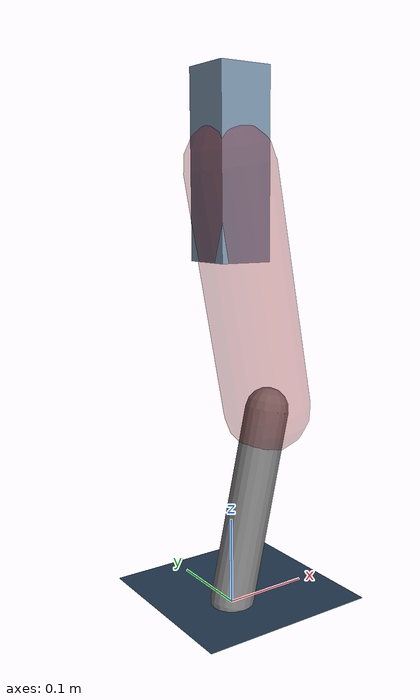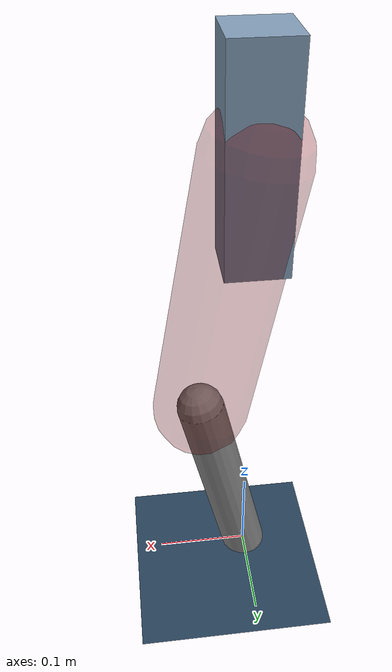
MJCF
<mujoco model="Hopper2D">
	<compiler inertiafromgeom="true" angle="radian" />
	<option timestep="0.001" integrator="implicit" cone="elliptic" solver="Newton" tolerance="1e-10" />

	<default>
		<geom contype="1" conaffinity="1" condim="3" friction="2 0.005 0.0001" solref="0.005 1" />
		<joint limited="true" damping="0.1" />
	</default>

	<asset>
		<texture name="skybox" type="skybox" builtin="gradient" rgb1=".4 .6 .8" rgb2="0 0 0" width="800" height="800" />
		<texture name="grid" type="2d" builtin="checker" rgb1=".1 .2 .3" rgb2=".2 .3 .4" width="300" height="300" mark="edge" markrgb=".2 .3 .4" />
		<material name="ground" texture="grid" texrepeat="1 1" texuniform="true" reflectance="0.1" />
		<material name="leg" rgba="0.5 0.6 0.7 1" />
	</asset>

	<worldbody>

		<geom name="floor" type="plane" size="5 5 0.25" material="ground" />

		<light directional="false" diffuse="0.8 0.8 0.8" specular="0.3 0.3 0.3" pos="0 0 2" dir="0 0 -1" />
		<light mode="targetbodycom" target="base" directional="false" diffuse="0.8 0.8 0.8" specular="0.3 0.3 0.3" pos="0 0 2" dir="0 0 -1" />

		<camera name="fixed" pos="0 -2 1" xyaxes="1 0 0 0 0 1" />
		<camera name="tracking" mode="trackcom" pos="0 -3 1" />

		<body name="root" pos="0 0 0.49299105033352575">
			<joint name="slide_x" type="slide" axis="1 0 0" range="-100 100" />
			<joint name="slide_z" type="slide" axis="0 0 1" range="0 10" />

			<body name="base" pos="0 0 0">
				<geom name="torso" type="box" size="0.03 0.03 0.1" mass="1.898" material="leg" />

				<body name="link1" pos="0 0 0" euler="0 1.3886233399446173 0">
					<joint type="hinge" axis="0 -1 0" pos="0 0 0" name="hinge1" limited="true" range="-3.14 3.14" stiffness="0" damping="0.1" />
					<geom name="thigh" type="capsule" fromto="0 0 0 0.2742566527701508 0 0" size="0.05" rgba="0.5 0 0 0.3" mass="0.9198929624794072" />

					<body name="link2" pos="0.2742566527701508 0 0" euler="0 0.40114113193327877 0">
						<joint type="hinge" axis="0 -1 0" pos="0 0 0" name="hinge2" limited="true" range="-3.14 3.14" stiffness="0" damping="0.1" />
						<geom name="shank" type="capsule" fromto="0 0 0 0.22873439756337496 0 0" size="0.025" mass="0.42496095780703746" />

					</body>
				</body>
			</body>
		</body>
	</worldbody>

	<actuator>
		<motor name="torque1" joint="hinge1" ctrlrange="-60.202556341416 60.202556341416" ctrllimited="true" gear="1" />
		<motor name="torque2" joint="hinge2" ctrlrange="-78.02046519798981 78.02046519798981" ctrllimited="true" gear="1" />
	</actuator>
</mujoco>
